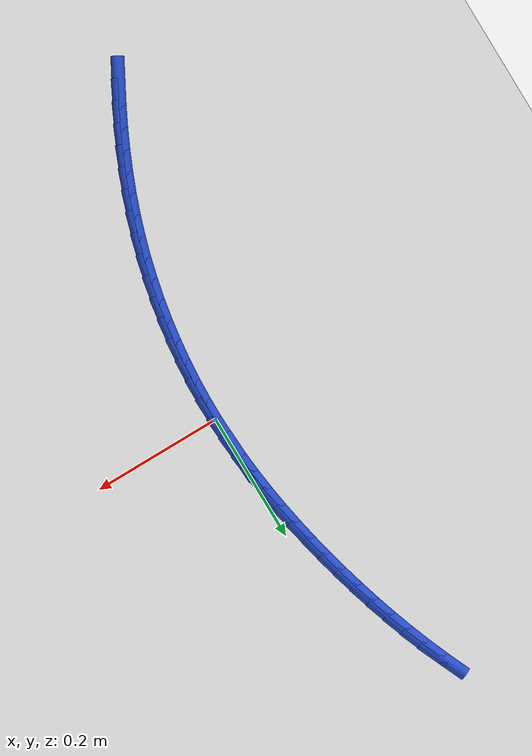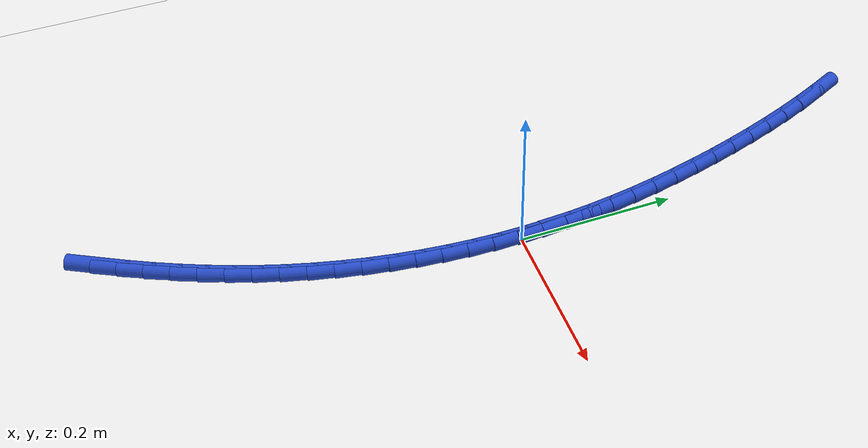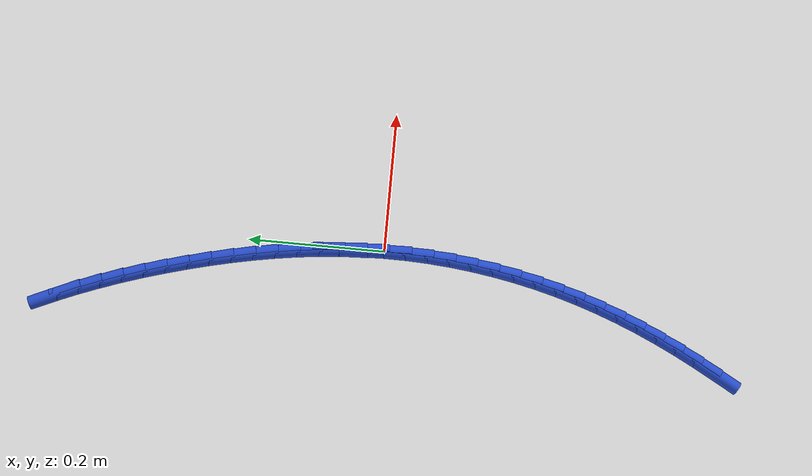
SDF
<sdf version="1.6">
 <world name="default">
  <model name="ground_plane">
   <static>1</static>
   <link name="link">
    <collision name="collision">
     <geometry><plane><normal>0 0 1</normal><size>100 100</size></plane></geometry>
     <surface><friction><ode><mu>100</mu><mu2>50</mu2></ode></friction></surface>
    </collision>
    <visual name="visual">
     <cast_shadows>0</cast_shadows>
     <geometry><plane><normal>0 0 1</normal><size>100 100</size></plane></geometry>
     <material>
      <script><uri>file://media/materials/scripts/gazebo.material</uri><name>Gazebo/WhiteGlow</name></script>
     </material>
    </visual>
   </link>
  </model>
  <model name="line">
   <link name="link_0">
    <pose>-8.673617379884035e-19 6.938893903907228e-18 0.01 0 1.57 -1.543074428844468</pose>
    <collision name="collision">
     <geometry><cylinder><radius>0.01</radius><length>0.08</length></cylinder></geometry>
    </collision>
    <visual name="visual">
     <material>
      <script><name>Gazebo/Blue</name><uri>file://media/materials/scripts/gazebo.material</uri></script>
     </material>
     <geometry><cylinder><radius>0.01</radius><length>0.08</length></cylinder></geometry>
    </visual>
   </link>
   <link name="link_1">
    <pose>-0.0008950172281808408 0.03227729729658933 0.01 0 1.57 -1.5096333956772543</pose>
    <collision name="collision">
     <geometry><cylinder><radius>0.01</radius><length>0.08</length></cylinder></geometry>
    </collision>
    <visual name="visual">
     <material>
      <script><name>Gazebo/Blue</name><uri>file://media/materials/scripts/gazebo.material</uri></script>
     </material>
     <geometry><cylinder><radius>0.01</radius><length>0.08</length></cylinder></geometry>
    </visual>
   </link>
   <link name="link_2">
    <pose>-0.0028680352693637506 0.06449545788700523 0.01 0 1.57 -1.4777928060245455</pose>
    <collision name="collision">
     <geometry><cylinder><radius>0.01</radius><length>0.08</length></cylinder></geometry>
    </collision>
    <visual name="visual">
     <material>
      <script><name>Gazebo/Blue</name><uri>file://media/materials/scripts/gazebo.material</uri></script>
     </material>
     <geometry><cylinder><radius>0.01</radius><length>0.08</length></cylinder></geometry>
    </visual>
   </link>
   <link name="link_3">
    <pose>-0.005866550146717172 0.09664332164781306 0.01 0 1.57 -1.447571242681632</pose>
    <collision name="collision">
     <geometry><cylinder><radius>0.01</radius><length>0.08</length></cylinder></geometry>
    </collision>
    <visual name="visual">
     <material>
      <script><name>Gazebo/Blue</name><uri>file://media/materials/scripts/gazebo.material</uri></script>
     </material>
     <geometry><cylinder><radius>0.01</radius><length>0.08</length></cylinder></geometry>
    </visual>
   </link>
   <link name="link_4">
    <pose>-0.00983805788340953 0.1287097284555783 0.01 0 1.57 -1.4189734854219613</pose>
    <collision name="collision">
     <geometry><cylinder><radius>0.01</radius><length>0.08</length></cylinder></geometry>
    </collision>
    <visual name="visual">
     <material>
      <script><name>Gazebo/Blue</name><uri>file://media/materials/scripts/gazebo.material</uri></script>
     </material>
     <geometry><cylinder><radius>0.01</radius><length>0.08</length></cylinder></geometry>
    </visual>
   </link>
   <link name="link_5">
    <pose>-0.014730054502609264 0.16068351818686633 0.01 0 1.57 -1.3919929196407517</pose>
    <collision name="collision">
     <geometry><cylinder><radius>0.01</radius><length>0.08</length></cylinder></geometry>
    </collision>
    <visual name="visual">
     <material>
      <script><name>Gazebo/Blue</name><uri>file://media/materials/scripts/gazebo.material</uri></script>
     </material>
     <geometry><cylinder><radius>0.01</radius><length>0.08</length></cylinder></geometry>
    </visual>
   </link>
   <link name="link_6">
    <pose>-0.02049003602748481 0.19255353071824263 0.01 0 1.57 -1.3666138655909075</pose>
    <collision name="collision">
     <geometry><cylinder><radius>0.01</radius><length>0.08</length></cylinder></geometry>
    </collision>
    <visual name="visual">
     <material>
      <script><name>Gazebo/Blue</name><uri>file://media/materials/scripts/gazebo.material</uri></script>
     </material>
     <geometry><cylinder><radius>0.01</radius><length>0.08</length></cylinder></geometry>
    </visual>
   </link>
   <link name="link_7">
    <pose>-0.0270654984812046 0.22430860592627264 0.01 0 1.57 -1.3428137571653331</pose>
    <collision name="collision">
     <geometry><cylinder><radius>0.01</radius><length>0.08</length></cylinder></geometry>
    </collision>
    <visual name="visual">
     <material>
      <script><name>Gazebo/Blue</name><uri>file://media/materials/scripts/gazebo.material</uri></script>
     </material>
     <geometry><cylinder><radius>0.01</radius><length>0.08</length></cylinder></geometry>
    </visual>
   </link>
   <link name="link_8">
    <pose>-0.034403937886937054 0.25593758368752173 0.01 0 1.57 -1.320565127064045</pose>
    <collision name="collision">
     <geometry><cylinder><radius>0.01</radius><length>0.08</length></cylinder></geometry>
    </collision>
    <visual name="visual">
     <material>
      <script><name>Gazebo/Blue</name><uri>file://media/materials/scripts/gazebo.material</uri></script>
     </material>
     <geometry><cylinder><radius>0.01</radius><length>0.08</length></cylinder></geometry>
    </visual>
   </link>
   <link name="link_9">
    <pose>-0.04245285026785062 0.2874293038785555 0.01 0 1.57 -1.2996378656930734</pose>
    <collision name="collision">
     <geometry><cylinder><radius>0.01</radius><length>0.08</length></cylinder></geometry>
    </collision>
    <visual name="visual">
     <material>
      <script><name>Gazebo/Blue</name><uri>file://media/materials/scripts/gazebo.material</uri></script>
     </material>
     <geometry><cylinder><radius>0.01</radius><length>0.08</length></cylinder></geometry>
    </visual>
   </link>
   <link name="link_10">
    <pose>-0.05116590557504904 0.3187705834602469 0.01 0 1.57 -1.2783561287678809</pose>
    <collision name="collision">
     <geometry><cylinder><radius>0.01</radius><length>0.08</length></cylinder></geometry>
    </collision>
    <visual name="visual">
     <material>
      <script><name>Gazebo/Blue</name><uri>file://media/materials/scripts/gazebo.material</uri></script>
     </material>
     <geometry><cylinder><radius>0.01</radius><length>0.08</length></cylinder></geometry>
    </visual>
   </link>
   <link name="link_11">
    <pose>-0.06054761636015926 0.34993158058314355 0.01 0 1.57 -1.2558774295632977</pose>
    <collision name="collision">
     <geometry><cylinder><radius>0.01</radius><length>0.08</length></cylinder></geometry>
    </collision>
    <visual name="visual">
     <material>
      <script><name>Gazebo/Blue</name><uri>file://media/materials/scripts/gazebo.material</uri></script>
     </material>
     <geometry><cylinder><radius>0.01</radius><length>0.08</length></cylinder></geometry>
    </visual>
   </link>
   <link name="link_12">
    <pose>-0.0706274959015604 0.38087426179546213 0.01 0 1.57 -1.2321620871713928</pose>
    <collision name="collision">
     <geometry><cylinder><radius>0.01</radius><length>0.08</length></cylinder></geometry>
    </collision>
    <visual name="visual">
     <material>
      <script><name>Gazebo/Blue</name><uri>file://media/materials/scripts/gazebo.material</uri></script>
     </material>
     <geometry><cylinder><radius>0.01</radius><length>0.08</length></cylinder></geometry>
    </visual>
   </link>
   <link name="link_13">
    <pose>-0.08143523141045743 0.4115605366555343 0.01 0 1.57 -1.2071777838790654</pose>
    <collision name="collision">
     <geometry><cylinder><radius>0.01</radius><length>0.08</length></cylinder></geometry>
    </collision>
    <visual name="visual">
     <material>
      <script><name>Gazebo/Blue</name><uri>file://media/materials/scripts/gazebo.material</uri></script>
     </material>
     <geometry><cylinder><radius>0.01</radius><length>0.08</length></cylinder></geometry>
    </visual>
   </link>
   <link name="link_14">
    <pose>-0.09300051009805532 0.4419523147216919 0.01 0 1.57 -1.1808950570090266</pose>
    <collision name="collision">
     <geometry><cylinder><radius>0.01</radius><length>0.08</length></cylinder></geometry>
    </collision>
    <visual name="visual">
     <material>
      <script><name>Gazebo/Blue</name><uri>file://media/materials/scripts/gazebo.material</uri></script>
     </material>
     <geometry><cylinder><radius>0.01</radius><length>0.08</length></cylinder></geometry>
    </visual>
   </link>
   <link name="link_15">
    <pose>-0.10535301917555896 0.47201150555226606 0.01 0 1.57 -1.153288567595181</pose>
    <collision name="collision">
     <geometry><cylinder><radius>0.01</radius><length>0.08</length></cylinder></geometry>
    </collision>
    <visual name="visual">
     <material>
      <script><name>Gazebo/Blue</name><uri>file://media/materials/scripts/gazebo.material</uri></script>
     </material>
     <geometry><cylinder><radius>0.01</radius><length>0.08</length></cylinder></geometry>
    </visual>
   </link>
   <link name="link_194">
    <pose>-0.13296218259899925 -0.49528845056433757 0.01 0 1.57 1.0727086286196938</pose>
    <collision name="collision">
     <geometry><cylinder><radius>0.01</radius><length>0.08</length></cylinder></geometry>
    </collision>
    <visual name="visual">
     <material>
      <script><name>Gazebo/Blue</name><uri>file://media/materials/scripts/gazebo.material</uri></script>
     </material>
     <geometry><cylinder><radius>0.01</radius><length>0.08</length></cylinder></geometry>
    </visual>
   </link>
   <link name="link_195">
    <pose>-0.11750885209065692 -0.46687229804053065 0.01 0 1.57 1.0989451302406907</pose>
    <collision name="collision">
     <geometry><cylinder><radius>0.01</radius><length>0.08</length></cylinder></geometry>
    </collision>
    <visual name="visual">
     <material>
      <script><name>Gazebo/Blue</name><uri>file://media/materials/scripts/gazebo.material</uri></script>
     </material>
     <geometry><cylinder><radius>0.01</radius><length>0.08</length></cylinder></geometry>
    </visual>
   </link>
   <link name="link_196">
    <pose>-0.1027769088794596 -0.43800294428359215 0.01 0 1.57 1.1265615526088768</pose>
    <collision name="collision">
     <geometry><cylinder><radius>0.01</radius><length>0.08</length></cylinder></geometry>
    </collision>
    <visual name="visual">
     <material>
      <script><name>Gazebo/Blue</name><uri>file://media/materials/scripts/gazebo.material</uri></script>
     </material>
     <geometry><cylinder><radius>0.01</radius><length>0.08</length></cylinder></geometry>
    </visual>
   </link>
   <link name="link_197">
    <pose>-0.08882952293985513 -0.40869951175514707 0.01 0 1.57 1.1556252438026933</pose>
    <collision name="collision">
     <geometry><cylinder><radius>0.01</radius><length>0.08</length></cylinder></geometry>
    </collision>
    <visual name="visual">
     <material>
      <script><name>Gazebo/Blue</name><uri>file://media/materials/scripts/gazebo.material</uri></script>
     </material>
     <geometry><cylinder><radius>0.01</radius><length>0.08</length></cylinder></geometry>
    </visual>
   </link>
   <link name="link_198">
    <pose>-0.07572986424629032 -0.3789811229168181 0.01 0 1.57 1.186200989515947</pose>
    <collision name="collision">
     <geometry><cylinder><radius>0.01</radius><length>0.08</length></cylinder></geometry>
    </collision>
    <visual name="visual">
     <material>
      <script><name>Gazebo/Blue</name><uri>file://media/materials/scripts/gazebo.material</uri></script>
     </material>
     <geometry><cylinder><radius>0.01</radius><length>0.08</length></cylinder></geometry>
    </visual>
   </link>
   <link name="link_199">
    <pose>-0.06354110277321233 -0.34886690023022876 0.01 0 1.57 1.2183491596523253</pose>
    <collision name="collision">
     <geometry><cylinder><radius>0.01</radius><length>0.08</length></cylinder></geometry>
    </collision>
    <visual name="visual">
     <material>
      <script><name>Gazebo/Blue</name><uri>file://media/materials/scripts/gazebo.material</uri></script>
     </material>
     <geometry><cylinder><radius>0.01</radius><length>0.08</length></cylinder></geometry>
    </visual>
   </link>
   <link name="link_200">
    <pose>-0.05232640849506827 -0.3183759661570024 0.01 0 1.57 1.2521193910885415</pose>
    <collision name="collision">
     <geometry><cylinder><radius>0.01</radius><length>0.08</length></cylinder></geometry>
    </collision>
    <visual name="visual">
     <material>
      <script><name>Gazebo/Blue</name><uri>file://media/materials/scripts/gazebo.material</uri></script>
     </material>
     <geometry><cylinder><radius>0.01</radius><length>0.08</length></cylinder></geometry>
    </visual>
   </link>
   <link name="link_201">
    <pose>-0.042148827981912315 -0.28752749228400315 0.01 0 1.57 1.2869710261245906</pose>
    <collision name="collision">
     <geometry><cylinder><radius>0.01</radius><length>0.08</length></cylinder></geometry>
    </collision>
    <visual name="visual">
     <material>
      <script><name>Gazebo/Blue</name><uri>file://media/materials/scripts/gazebo.material</uri></script>
     </material>
     <geometry><cylinder><radius>0.01</radius><length>0.08</length></cylinder></geometry>
    </visual>
   </link>
   <link name="link_202">
    <pose>-0.033053669924278425 -0.2563477113535125 0.01 0 1.57 1.3217582280425226</pose>
    <collision name="collision">
     <geometry><cylinder><radius>0.01</radius><length>0.08</length></cylinder></geometry>
    </collision>
    <visual name="visual">
     <material>
      <script><name>Gazebo/Blue</name><uri>file://media/materials/scripts/gazebo.material</uri></script>
     </material>
     <geometry><cylinder><radius>0.01</radius><length>0.08</length></cylinder></geometry>
    </visual>
   </link>
   <link name="link_203">
    <pose>-0.025050170464430543 -0.22487721599053817 0.01 0 1.57 1.3563871276954003</pose>
    <collision name="collision">
     <geometry><cylinder><radius>0.01</radius><length>0.08</length></cylinder></geometry>
    </collision>
    <visual name="visual">
     <material>
      <script><name>Gazebo/Blue</name><uri>file://media/materials/scripts/gazebo.material</uri></script>
     </material>
     <geometry><cylinder><radius>0.01</radius><length>0.08</length></cylinder></geometry>
    </visual>
   </link>
   <link name="link_204">
    <pose>-0.01814318537637445 -0.19315834257198247 0.01 0 1.57 1.390909931043012</pose>
    <collision name="collision">
     <geometry><cylinder><radius>0.01</radius><length>0.08</length></cylinder></geometry>
    </collision>
    <visual name="visual">
     <material>
      <script><name>Gazebo/Blue</name><uri>file://media/materials/scripts/gazebo.material</uri></script>
     </material>
     <geometry><cylinder><radius>0.01</radius><length>0.08</length></cylinder></geometry>
    </visual>
   </link>
   <link name="link_205">
    <pose>-0.012337570434116105 -0.16123342747474817 0.01 0 1.57 1.4253797345599613</pose>
    <collision name="collision">
     <geometry><cylinder><radius>0.01</radius><length>0.08</length></cylinder></geometry>
    </collision>
    <visual name="visual">
     <material>
      <script><name>Gazebo/Blue</name><uri>file://media/materials/scripts/gazebo.material</uri></script>
     </material>
     <geometry><cylinder><radius>0.01</radius><length>0.08</length></cylinder></geometry>
    </visual>
   </link>
   <link name="link_206">
    <pose>-0.007638181411661496 -0.12914480707573817 0.01 0 1.57 1.4598502370497908</pose>
    <collision name="collision">
     <geometry><cylinder><radius>0.01</radius><length>0.08</length></cylinder></geometry>
    </collision>
    <visual name="visual">
     <material>
      <script><name>Gazebo/Blue</name><uri>file://media/materials/scripts/gazebo.material</uri></script>
     </material>
     <geometry><cylinder><radius>0.01</radius><length>0.08</length></cylinder></geometry>
    </visual>
   </link>
   <link name="link_207">
    <pose>-0.004049874083016608 -0.0969348177518555 0.01 0 1.57 1.494375461734464</pose>
    <collision name="collision">
     <geometry><cylinder><radius>0.01</radius><length>0.08</length></cylinder></geometry>
    </collision>
    <visual name="visual">
     <material>
      <script><name>Gazebo/Blue</name><uri>file://media/materials/scripts/gazebo.material</uri></script>
     </material>
     <geometry><cylinder><radius>0.01</radius><length>0.08</length></cylinder></geometry>
    </visual>
   </link>
   <link name="link_208">
    <pose>-0.0015775042221874047 -0.06464579588000297 0.01 0 1.57 1.5290094794098161</pose>
    <collision name="collision">
     <geometry><cylinder><radius>0.01</radius><length>0.08</length></cylinder></geometry>
    </collision>
    <visual name="visual">
     <material>
      <script><name>Gazebo/Blue</name><uri>file://media/materials/scripts/gazebo.material</uri></script>
     </material>
     <geometry><cylinder><radius>0.01</radius><length>0.08</length></cylinder></geometry>
    </visual>
   </link>
   <link name="link_209">
    <pose>-0.0002259276031798584 -0.032320077837082795 0.01 0 1.57 1.5638061232292593</pose>
    <collision name="collision">
     <geometry><cylinder><radius>0.01</radius><length>0.08</length></cylinder></geometry>
    </collision>
    <visual name="visual">
     <material>
      <script><name>Gazebo/Blue</name><uri>file://media/materials/scripts/gazebo.material</uri></script>
     </material>
     <geometry><cylinder><radius>0.01</radius><length>0.08</length></cylinder></geometry>
    </visual>
   </link>
   <link name="link_210">
    <pose>-1.734723475976807e-18 -1.3877787807814457e-16 0.01 0 1.57 -1.5427739680005292</pose>
    <collision name="collision">
     <geometry><cylinder><radius>0.01</radius><length>0.08</length></cylinder></geometry>
    </collision>
    <visual name="visual">
     <material>
      <script><name>Gazebo/Blue</name><uri>file://media/materials/scripts/gazebo.material</uri></script>
     </material>
     <geometry><cylinder><radius>0.01</radius><length>0.08</length></cylinder></geometry>
    </visual>
   </link>
   <link name="link_211">
    <pose>-0.0009045771866537551 0.03227210125434436 0.01 0 1.57 -1.5074930659313237</pose>
    <collision name="collision">
     <geometry><cylinder><radius>0.01</radius><length>0.08</length></cylinder></geometry>
    </collision>
    <visual name="visual">
     <material>
      <script><name>Gazebo/Blue</name><uri>file://media/materials/scripts/gazebo.material</uri></script>
     </material>
     <geometry><cylinder><radius>0.01</radius><length>0.08</length></cylinder></geometry>
    </visual>
   </link>
   <link name="link_212">
    <pose>-0.002944514937147237 0.06445388954904852 0.01 0 1.57 -1.5251440149487605</pose>
    <collision name="collision">
     <geometry><cylinder><radius>0.01</radius><length>0.08</length></cylinder></geometry>
    </collision>
    <visual name="visual">
     <material>
      <script><name>Gazebo/Blue</name><uri>file://media/materials/scripts/gazebo.material</uri></script>
     </material>
     <geometry><cylinder><radius>0.01</radius><length>0.08</length></cylinder></geometry>
    </visual>
   </link>
  </model>
 </world>
</sdf>
